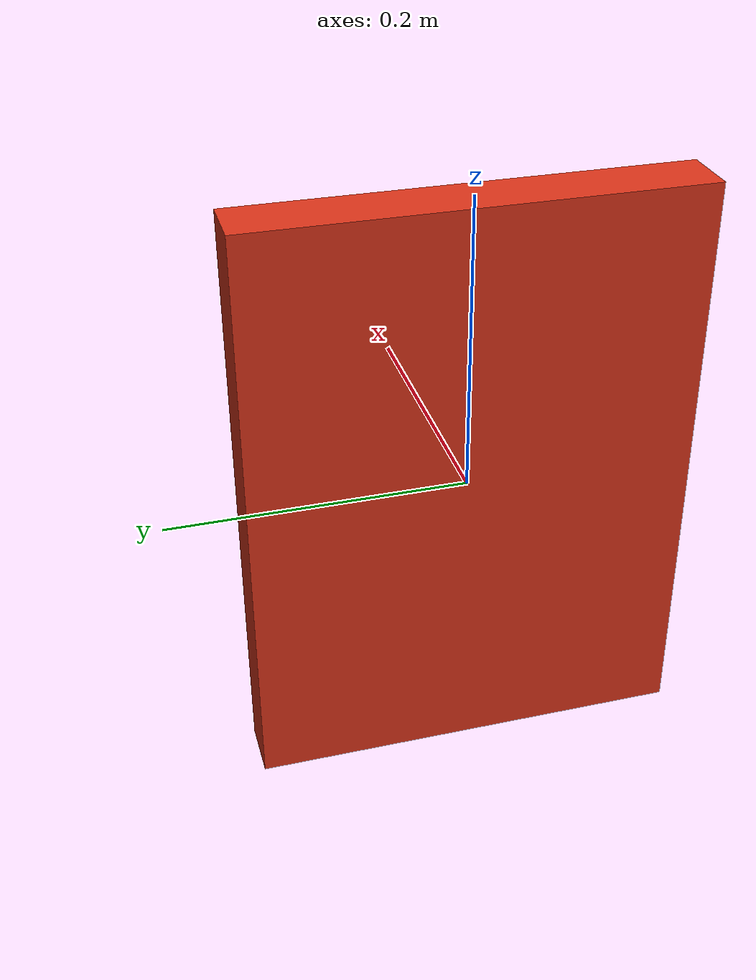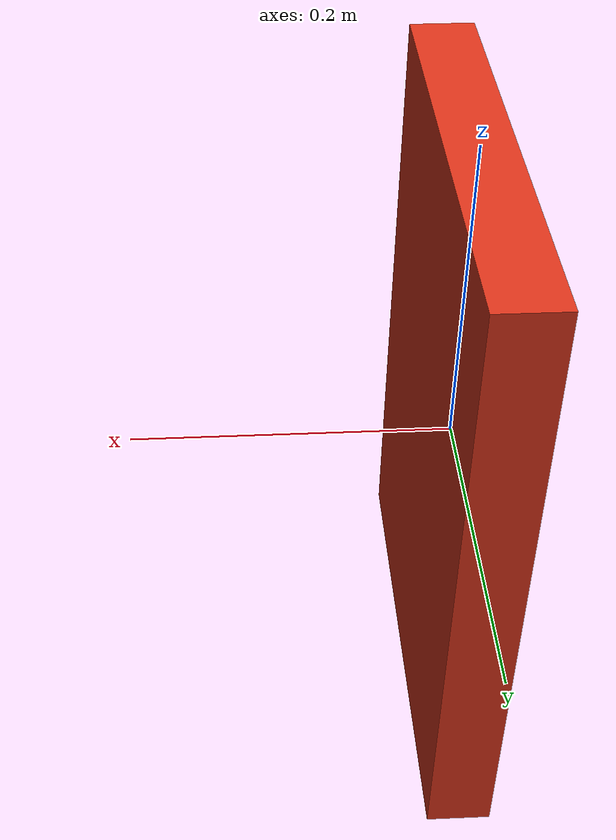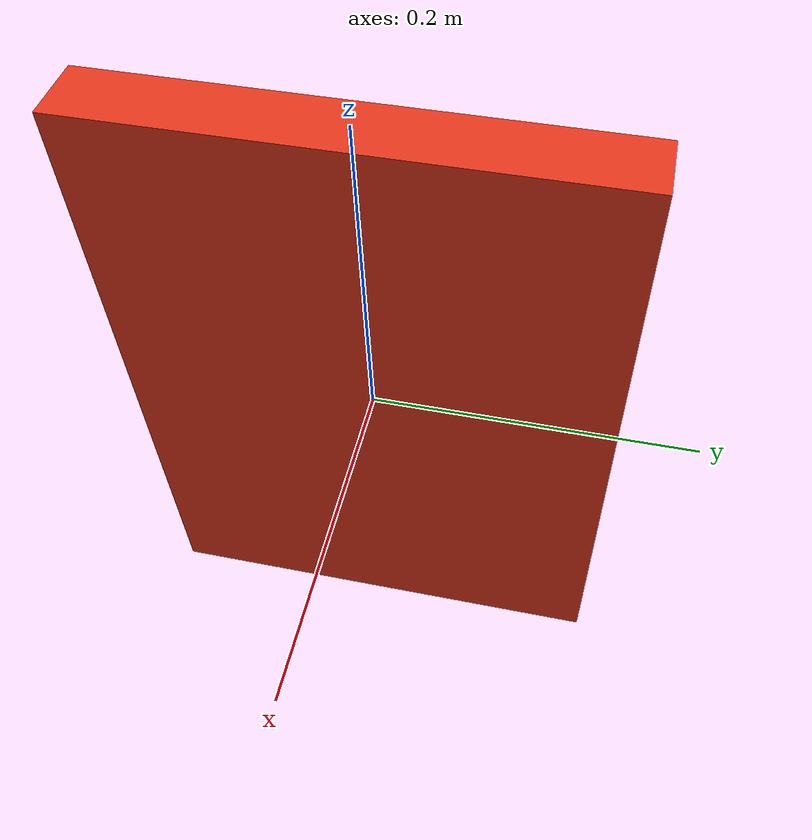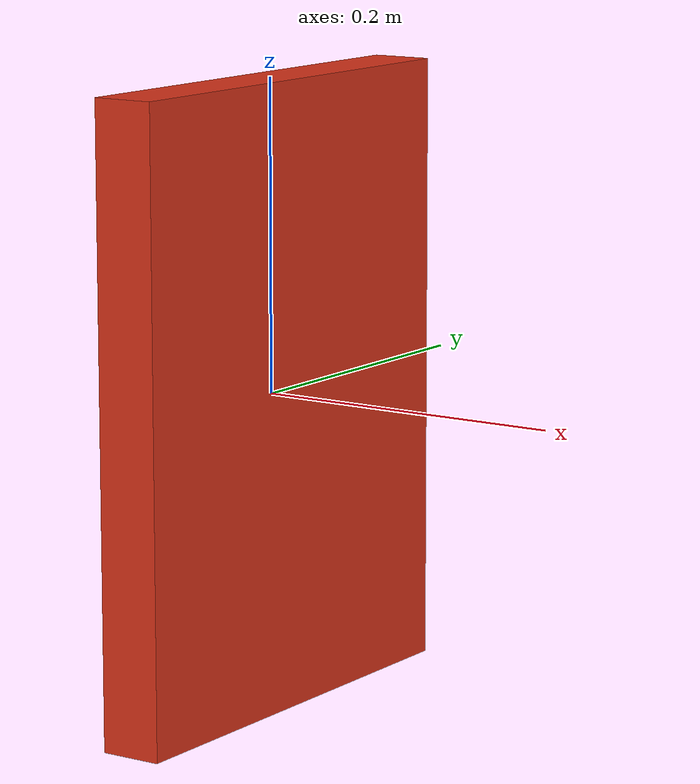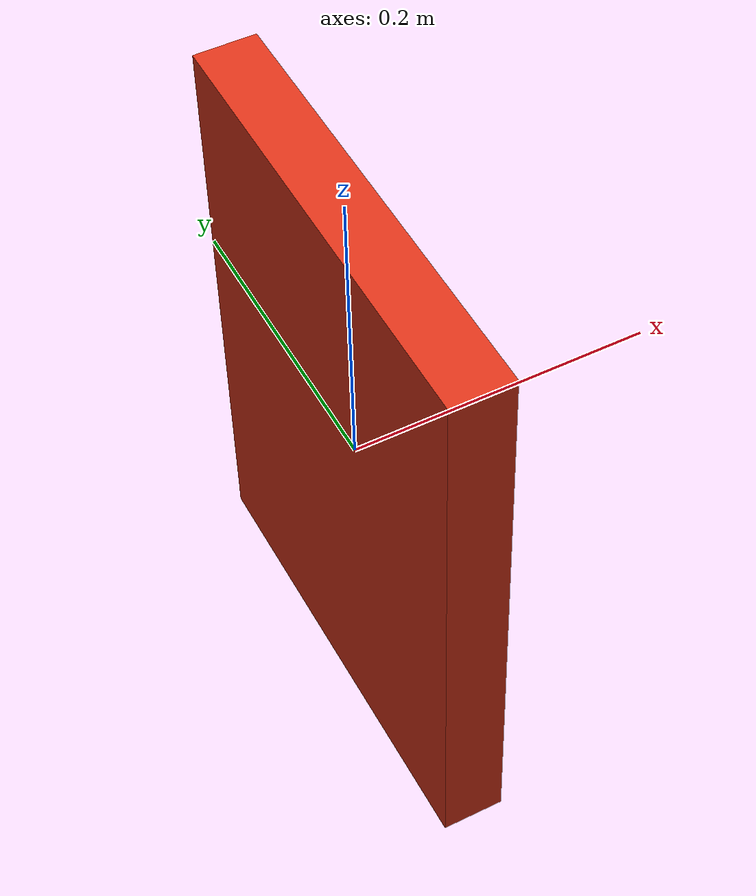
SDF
<?xml version="1.0"?>
<sdf version="1.9">
  <model name="control_test_obstacle">
    <static>true</static>
    <link name="body">
      <visual name="visual">
        <geometry>
          <box>
            <size>0.04 0.30 0.40</size>
          </box>
        </geometry>
        <material>
          <ambient>0.85 0.20 0.10 1</ambient>
          <diffuse>0.85 0.20 0.10 1</diffuse>
        </material>
      </visual>
      <collision name="collision">
        <geometry>
          <box>
            <size>0.04 0.30 0.40</size>
          </box>
        </geometry>
      </collision>
    </link>
  </model>
</sdf>
